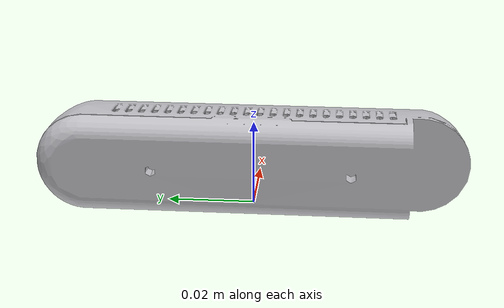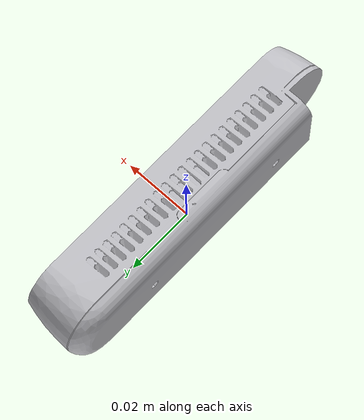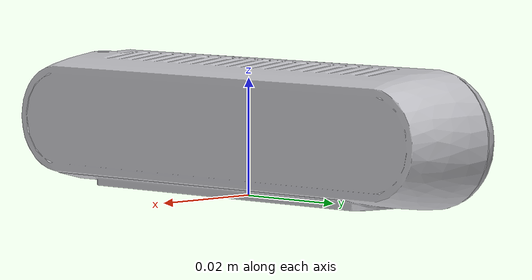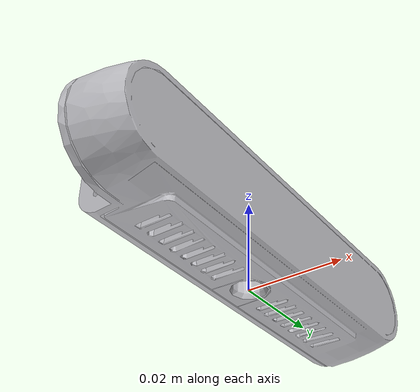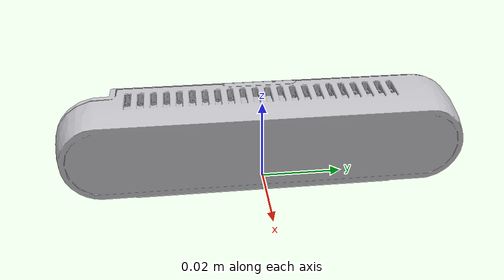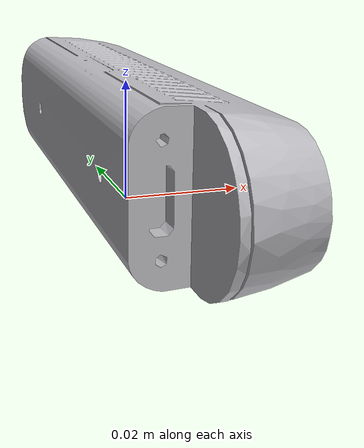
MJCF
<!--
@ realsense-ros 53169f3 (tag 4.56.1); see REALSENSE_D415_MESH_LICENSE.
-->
<mujoco model="realsense_d415">
  <compiler angle="radian" meshdir="meshes" autolimits="true"/>

  <asset>
    <mesh name="d415_mesh" file="d415.obj"/>
    <material name="d415_body" rgba="0.75 0.75 0.77 1" specular="0.4" shininess="0.3"/>
  </asset>

  <worldbody>
    <body name="mount">
      <body name="link" pos="0 0.02 0.0115">
        <geom name="d415_visual" type="mesh" mesh="d415_mesh" material="d415_body"
              pos="0.00987 -0.02 0" quat="0.5 0.5 0.5 0.5" contype="0" conaffinity="0"/>
        <geom name="d415_collision" type="box" pos="-0.00013 -0.02 0"
              quat="0.5 0.5 0.5 0.5" size="0.0495 0.0115 0.01" group="3"/>
        <camera name="d415_color" pos="0 0.015 0" xyaxes="0 -1 0 0 0 1"
                fovy="42.5" resolution="640 480"/>
        <camera name="d415_depth" pos="0 0 0" xyaxes="0 -1 0 0 0 1"
                fovy="40" resolution="848 480"/>
      </body>
    </body>
  </worldbody>
</mujoco>
